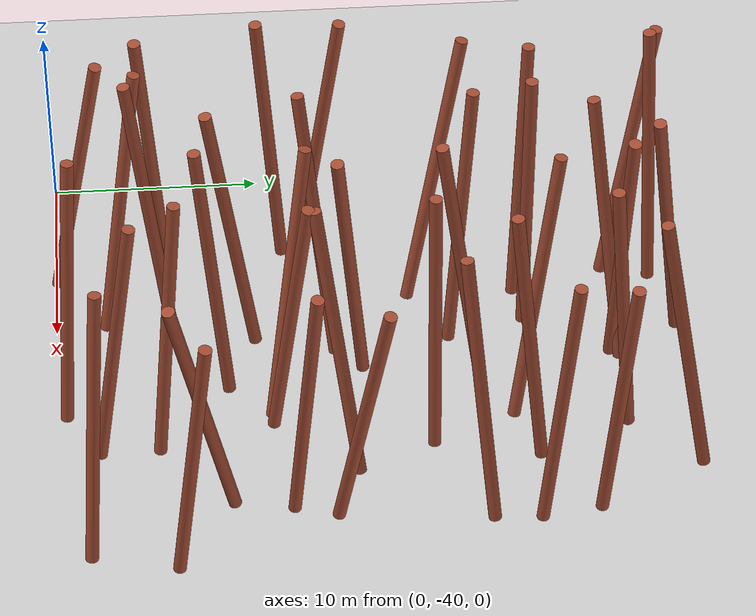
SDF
<sdf version="1.5">
 <world name="default">
  <include><uri>model://sun</uri></include>
  <include><uri>model://ground_plane</uri></include>
  <include><uri>model://asphalt_plane</uri><pose>0 0 -0.000001 0 0 0</pose></include>
  <model name="unit_cylinder_0">
   <pose>7.46567 -38.61308 7.70000 -0.17238 0.07720 0.00000</pose>
   <gravity>0 0 0</gravity>
   <link name="link">
    <inertial>
     <mass>100</mass>
     <inertia><ixx>20</ixx><ixy>0</ixy><ixz>0</ixz><iyy>20</iyy><iyz>0</iyz><izz>20</izz></inertia>
    </inertial>
    <collision name="collision">
     <geometry><cylinder><radius>0.300</radius><length>15.000</length></cylinder></geometry>
    </collision>
    <visual name="visual">
     <geometry><cylinder><radius>0.300</radius><length>15.000</length></cylinder></geometry>
     <material>
      <script><name>Gazebo/Bricks</name><uri>file://media/materials/scripts/gazebo.material</uri></script>
     </material>
    </visual>
   </link>
   <static>1</static>
  </model>
  <model name="unit_cylinder_1">
   <pose>6.21727 -35.06247 7.70000 0.06165 0.05477 0.00000</pose>
   <gravity>0 0 0</gravity>
   <link name="link">
    <inertial>
     <mass>100</mass>
     <inertia><ixx>20</ixx><ixy>0</ixy><ixz>0</ixz><iyy>20</iyy><iyz>0</iyz><izz>20</izz></inertia>
    </inertial>
    <collision name="collision">
     <geometry><cylinder><radius>0.300</radius><length>15.000</length></cylinder></geometry>
    </collision>
    <visual name="visual">
     <geometry><cylinder><radius>0.300</radius><length>15.000</length></cylinder></geometry>
     <material>
      <script><name>Gazebo/Bricks</name><uri>file://media/materials/scripts/gazebo.material</uri></script>
     </material>
    </visual>
    <kinematic>1</kinematic>
   </link>
   <static>0</static>
   <plugin name="dynamic_obstacle_motion_1" filename="libobstaclePathPlugin.so">
    <motion_type>proximity_linear</motion_type>
    <direction>-0.527582038 0.849504086 0.000000000</direction>
    <velocity>0.512762627</velocity>
    <activation_distance>20.000000000</activation_distance>
    <activation_model>iris</activation_model>
    <orientation>false</orientation>
    <marker_enabled>true</marker_enabled>
    <marker_id>1</marker_id>
    <marker_radius>0.300000000</marker_radius>
    <marker_height>15.000000000</marker_height>
    <marker_rate>20.0</marker_rate>
    <marker_topic>/uav_simulator/dynamic_obstacles</marker_topic>
    <marker_frame>map</marker_frame>
   </plugin>
  </model>
  <model name="unit_cylinder_2">
   <pose>5.43931 -29.41341 7.70000 0.06542 0.03011 0.00000</pose>
   <gravity>0 0 0</gravity>
   <link name="link">
    <inertial>
     <mass>100</mass>
     <inertia><ixx>20</ixx><ixy>0</ixy><ixz>0</ixz><iyy>20</iyy><iyz>0</iyz><izz>20</izz></inertia>
    </inertial>
    <collision name="collision">
     <geometry><cylinder><radius>0.300</radius><length>15.000</length></cylinder></geometry>
    </collision>
    <visual name="visual">
     <geometry><cylinder><radius>0.300</radius><length>15.000</length></cylinder></geometry>
     <material>
      <script><name>Gazebo/Bricks</name><uri>file://media/materials/scripts/gazebo.material</uri></script>
     </material>
    </visual>
   </link>
   <static>1</static>
  </model>
  <model name="unit_cylinder_3">
   <pose>5.35619 -27.03663 7.70000 -0.13429 0.05906 0.00000</pose>
   <gravity>0 0 0</gravity>
   <link name="link">
    <inertial>
     <mass>100</mass>
     <inertia><ixx>20</ixx><ixy>0</ixy><ixz>0</ixz><iyy>20</iyy><iyz>0</iyz><izz>20</izz></inertia>
    </inertial>
    <collision name="collision">
     <geometry><cylinder><radius>0.300</radius><length>15.000</length></cylinder></geometry>
    </collision>
    <visual name="visual">
     <geometry><cylinder><radius>0.300</radius><length>15.000</length></cylinder></geometry>
     <material>
      <script><name>Gazebo/Bricks</name><uri>file://media/materials/scripts/gazebo.material</uri></script>
     </material>
    </visual>
   </link>
   <static>1</static>
  </model>
  <model name="unit_cylinder_4">
   <pose>8.06512 -21.73586 7.70000 -0.17223 -0.11071 0.00000</pose>
   <gravity>0 0 0</gravity>
   <link name="link">
    <inertial>
     <mass>100</mass>
     <inertia><ixx>20</ixx><ixy>0</ixy><ixz>0</ixz><iyy>20</iyy><iyz>0</iyz><izz>20</izz></inertia>
    </inertial>
    <collision name="collision">
     <geometry><cylinder><radius>0.300</radius><length>15.000</length></cylinder></geometry>
    </collision>
    <visual name="visual">
     <geometry><cylinder><radius>0.300</radius><length>15.000</length></cylinder></geometry>
     <material>
      <script><name>Gazebo/Bricks</name><uri>file://media/materials/scripts/gazebo.material</uri></script>
     </material>
    </visual>
    <kinematic>1</kinematic>
   </link>
   <static>0</static>
   <plugin name="dynamic_obstacle_motion_4" filename="libobstaclePathPlugin.so">
    <motion_type>proximity_linear</motion_type>
    <direction>-0.752486816 -0.658607312 0.000000000</direction>
    <velocity>0.386107136</velocity>
    <activation_distance>20.000000000</activation_distance>
    <activation_model>iris</activation_model>
    <orientation>false</orientation>
    <marker_enabled>true</marker_enabled>
    <marker_id>4</marker_id>
    <marker_radius>0.300000000</marker_radius>
    <marker_height>15.000000000</marker_height>
    <marker_rate>20.0</marker_rate>
    <marker_topic>/uav_simulator/dynamic_obstacles</marker_topic>
    <marker_frame>map</marker_frame>
   </plugin>
  </model>
  <model name="unit_cylinder_5">
   <pose>8.40337 -17.65239 7.70000 -0.02762 -0.04246 0.00000</pose>
   <gravity>0 0 0</gravity>
   <link name="link">
    <inertial>
     <mass>100</mass>
     <inertia><ixx>20</ixx><ixy>0</ixy><ixz>0</ixz><iyy>20</iyy><iyz>0</iyz><izz>20</izz></inertia>
    </inertial>
    <collision name="collision">
     <geometry><cylinder><radius>0.300</radius><length>15.000</length></cylinder></geometry>
    </collision>
    <visual name="visual">
     <geometry><cylinder><radius>0.300</radius><length>15.000</length></cylinder></geometry>
     <material>
      <script><name>Gazebo/Bricks</name><uri>file://media/materials/scripts/gazebo.material</uri></script>
     </material>
    </visual>
    <kinematic>1</kinematic>
   </link>
   <static>0</static>
   <plugin name="dynamic_obstacle_motion_5" filename="libobstaclePathPlugin.so">
    <motion_type>proximity_linear</motion_type>
    <direction>-0.904084248 -0.427354271 -0.000000000</direction>
    <velocity>0.561092228</velocity>
    <activation_distance>20.000000000</activation_distance>
    <activation_model>iris</activation_model>
    <orientation>false</orientation>
    <marker_enabled>true</marker_enabled>
    <marker_id>5</marker_id>
    <marker_radius>0.300000000</marker_radius>
    <marker_height>15.000000000</marker_height>
    <marker_rate>20.0</marker_rate>
    <marker_topic>/uav_simulator/dynamic_obstacles</marker_topic>
    <marker_frame>map</marker_frame>
   </plugin>
  </model>
  <model name="unit_cylinder_6">
   <pose>7.36256 -12.42776 7.70000 -0.13301 -0.02550 0.00000</pose>
   <gravity>0 0 0</gravity>
   <link name="link">
    <inertial>
     <mass>100</mass>
     <inertia><ixx>20</ixx><ixy>0</ixy><ixz>0</ixz><iyy>20</iyy><iyz>0</iyz><izz>20</izz></inertia>
    </inertial>
    <collision name="collision">
     <geometry><cylinder><radius>0.300</radius><length>15.000</length></cylinder></geometry>
    </collision>
    <visual name="visual">
     <geometry><cylinder><radius>0.300</radius><length>15.000</length></cylinder></geometry>
     <material>
      <script><name>Gazebo/Bricks</name><uri>file://media/materials/scripts/gazebo.material</uri></script>
     </material>
    </visual>
    <kinematic>1</kinematic>
   </link>
   <static>0</static>
   <plugin name="dynamic_obstacle_motion_6" filename="libobstaclePathPlugin.so">
    <motion_type>proximity_linear</motion_type>
    <direction>0.969228966 -0.246160946 0.000000000</direction>
    <velocity>1.718504181</velocity>
    <activation_distance>20.000000000</activation_distance>
    <activation_model>iris</activation_model>
    <orientation>false</orientation>
    <marker_enabled>true</marker_enabled>
    <marker_id>6</marker_id>
    <marker_radius>0.300000000</marker_radius>
    <marker_height>15.000000000</marker_height>
    <marker_rate>20.0</marker_rate>
    <marker_topic>/uav_simulator/dynamic_obstacles</marker_topic>
    <marker_frame>map</marker_frame>
   </plugin>
  </model>
  <model name="unit_cylinder_7">
   <pose>7.78029 -11.45430 7.70000 0.04315 -0.04277 0.00000</pose>
   <gravity>0 0 0</gravity>
   <link name="link">
    <inertial>
     <mass>100</mass>
     <inertia><ixx>20</ixx><ixy>0</ixy><ixz>0</ixz><iyy>20</iyy><iyz>0</iyz><izz>20</izz></inertia>
    </inertial>
    <collision name="collision">
     <geometry><cylinder><radius>0.300</radius><length>15.000</length></cylinder></geometry>
    </collision>
    <visual name="visual">
     <geometry><cylinder><radius>0.300</radius><length>15.000</length></cylinder></geometry>
     <material>
      <script><name>Gazebo/Bricks</name><uri>file://media/materials/scripts/gazebo.material</uri></script>
     </material>
    </visual>
    <kinematic>1</kinematic>
   </link>
   <static>0</static>
   <plugin name="dynamic_obstacle_motion_7" filename="libobstaclePathPlugin.so">
    <motion_type>proximity_linear</motion_type>
    <direction>0.122197259 -0.992505834 0.000000000</direction>
    <velocity>0.489649809</velocity>
    <activation_distance>20.000000000</activation_distance>
    <activation_model>iris</activation_model>
    <orientation>false</orientation>
    <marker_enabled>true</marker_enabled>
    <marker_id>7</marker_id>
    <marker_radius>0.300000000</marker_radius>
    <marker_height>15.000000000</marker_height>
    <marker_rate>20.0</marker_rate>
    <marker_topic>/uav_simulator/dynamic_obstacles</marker_topic>
    <marker_frame>map</marker_frame>
   </plugin>
  </model>
  <model name="unit_cylinder_20">
   <pose>9.39629 -36.58790 7.70000 -0.13366 -0.08819 0.00000</pose>
   <gravity>0 0 0</gravity>
   <link name="link">
    <inertial>
     <mass>100</mass>
     <inertia><ixx>20</ixx><ixy>0</ixy><ixz>0</ixz><iyy>20</iyy><iyz>0</iyz><izz>20</izz></inertia>
    </inertial>
    <collision name="collision">
     <geometry><cylinder><radius>0.300</radius><length>15.000</length></cylinder></geometry>
    </collision>
    <visual name="visual">
     <geometry><cylinder><radius>0.300</radius><length>15.000</length></cylinder></geometry>
     <material>
      <script><name>Gazebo/Bricks</name><uri>file://media/materials/scripts/gazebo.material</uri></script>
     </material>
    </visual>
   </link>
   <static>1</static>
  </model>
  <model name="unit_cylinder_21">
   <pose>9.72256 -35.26683 7.70000 0.10694 -0.01709 0.00000</pose>
   <gravity>0 0 0</gravity>
   <link name="link">
    <inertial>
     <mass>100</mass>
     <inertia><ixx>20</ixx><ixy>0</ixy><ixz>0</ixz><iyy>20</iyy><iyz>0</iyz><izz>20</izz></inertia>
    </inertial>
    <collision name="collision">
     <geometry><cylinder><radius>0.300</radius><length>15.000</length></cylinder></geometry>
    </collision>
    <visual name="visual">
     <geometry><cylinder><radius>0.300</radius><length>15.000</length></cylinder></geometry>
     <material>
      <script><name>Gazebo/Bricks</name><uri>file://media/materials/scripts/gazebo.material</uri></script>
     </material>
    </visual>
   </link>
   <static>1</static>
  </model>
  <model name="unit_cylinder_22">
   <pose>11.58012 -31.44989 7.70000 0.13153 0.03549 0.00000</pose>
   <gravity>0 0 0</gravity>
   <link name="link">
    <inertial>
     <mass>100</mass>
     <inertia><ixx>20</ixx><ixy>0</ixy><ixz>0</ixz><iyy>20</iyy><iyz>0</iyz><izz>20</izz></inertia>
    </inertial>
    <collision name="collision">
     <geometry><cylinder><radius>0.300</radius><length>15.000</length></cylinder></geometry>
    </collision>
    <visual name="visual">
     <geometry><cylinder><radius>0.300</radius><length>15.000</length></cylinder></geometry>
     <material>
      <script><name>Gazebo/Bricks</name><uri>file://media/materials/scripts/gazebo.material</uri></script>
     </material>
    </visual>
    <kinematic>1</kinematic>
   </link>
   <static>0</static>
   <plugin name="dynamic_obstacle_motion_22" filename="libobstaclePathPlugin.so">
    <motion_type>proximity_linear</motion_type>
    <direction>0.973647008 -0.228060308 0.000000000</direction>
    <velocity>0.743068776</velocity>
    <activation_distance>20.000000000</activation_distance>
    <activation_model>iris</activation_model>
    <orientation>false</orientation>
    <marker_enabled>true</marker_enabled>
    <marker_id>22</marker_id>
    <marker_radius>0.300000000</marker_radius>
    <marker_height>15.000000000</marker_height>
    <marker_rate>20.0</marker_rate>
    <marker_topic>/uav_simulator/dynamic_obstacles</marker_topic>
    <marker_frame>map</marker_frame>
   </plugin>
  </model>
  <model name="unit_cylinder_23">
   <pose>11.50044 -27.46089 7.70000 0.10107 -0.10912 0.00000</pose>
   <gravity>0 0 0</gravity>
   <link name="link">
    <inertial>
     <mass>100</mass>
     <inertia><ixx>20</ixx><ixy>0</ixy><ixz>0</ixz><iyy>20</iyy><iyz>0</iyz><izz>20</izz></inertia>
    </inertial>
    <collision name="collision">
     <geometry><cylinder><radius>0.300</radius><length>15.000</length></cylinder></geometry>
    </collision>
    <visual name="visual">
     <geometry><cylinder><radius>0.300</radius><length>15.000</length></cylinder></geometry>
     <material>
      <script><name>Gazebo/Bricks</name><uri>file://media/materials/scripts/gazebo.material</uri></script>
     </material>
    </visual>
   </link>
   <static>1</static>
  </model>
  <model name="unit_cylinder_24">
   <pose>11.39231 -20.74590 7.70000 -0.06415 -0.04304 0.00000</pose>
   <gravity>0 0 0</gravity>
   <link name="link">
    <inertial>
     <mass>100</mass>
     <inertia><ixx>20</ixx><ixy>0</ixy><ixz>0</ixz><iyy>20</iyy><iyz>0</iyz><izz>20</izz></inertia>
    </inertial>
    <collision name="collision">
     <geometry><cylinder><radius>0.300</radius><length>15.000</length></cylinder></geometry>
    </collision>
    <visual name="visual">
     <geometry><cylinder><radius>0.300</radius><length>15.000</length></cylinder></geometry>
     <material>
      <script><name>Gazebo/Bricks</name><uri>file://media/materials/scripts/gazebo.material</uri></script>
     </material>
    </visual>
   </link>
   <static>1</static>
  </model>
  <model name="unit_cylinder_25">
   <pose>10.60450 -17.54416 7.70000 -0.00202 -0.00961 0.00000</pose>
   <gravity>0 0 0</gravity>
   <link name="link">
    <inertial>
     <mass>100</mass>
     <inertia><ixx>20</ixx><ixy>0</ixy><ixz>0</ixz><iyy>20</iyy><iyz>0</iyz><izz>20</izz></inertia>
    </inertial>
    <collision name="collision">
     <geometry><cylinder><radius>0.300</radius><length>15.000</length></cylinder></geometry>
    </collision>
    <visual name="visual">
     <geometry><cylinder><radius>0.300</radius><length>15.000</length></cylinder></geometry>
     <material>
      <script><name>Gazebo/Bricks</name><uri>file://media/materials/scripts/gazebo.material</uri></script>
     </material>
    </visual>
   </link>
   <static>1</static>
  </model>
  <model name="unit_cylinder_26">
   <pose>12.69051 -14.01166 7.70000 0.11256 -0.11408 0.00000</pose>
   <gravity>0 0 0</gravity>
   <link name="link">
    <inertial>
     <mass>100</mass>
     <inertia><ixx>20</ixx><ixy>0</ixy><ixz>0</ixz><iyy>20</iyy><iyz>0</iyz><izz>20</izz></inertia>
    </inertial>
    <collision name="collision">
     <geometry><cylinder><radius>0.300</radius><length>15.000</length></cylinder></geometry>
    </collision>
    <visual name="visual">
     <geometry><cylinder><radius>0.300</radius><length>15.000</length></cylinder></geometry>
     <material>
      <script><name>Gazebo/Bricks</name><uri>file://media/materials/scripts/gazebo.material</uri></script>
     </material>
    </visual>
   </link>
   <static>1</static>
  </model>
  <model name="unit_cylinder_27">
   <pose>12.63484 -11.14395 7.70000 0.12269 0.13580 0.00000</pose>
   <gravity>0 0 0</gravity>
   <link name="link">
    <inertial>
     <mass>100</mass>
     <inertia><ixx>20</ixx><ixy>0</ixy><ixz>0</ixz><iyy>20</iyy><iyz>0</iyz><izz>20</izz></inertia>
    </inertial>
    <collision name="collision">
     <geometry><cylinder><radius>0.300</radius><length>15.000</length></cylinder></geometry>
    </collision>
    <visual name="visual">
     <geometry><cylinder><radius>0.300</radius><length>15.000</length></cylinder></geometry>
     <material>
      <script><name>Gazebo/Bricks</name><uri>file://media/materials/scripts/gazebo.material</uri></script>
     </material>
    </visual>
    <kinematic>1</kinematic>
   </link>
   <static>0</static>
   <plugin name="dynamic_obstacle_motion_27" filename="libobstaclePathPlugin.so">
    <motion_type>proximity_linear</motion_type>
    <direction>0.649691815 -0.760197701 0.000000000</direction>
    <velocity>0.879295809</velocity>
    <activation_distance>20.000000000</activation_distance>
    <activation_model>iris</activation_model>
    <orientation>false</orientation>
    <marker_enabled>true</marker_enabled>
    <marker_id>27</marker_id>
    <marker_radius>0.300000000</marker_radius>
    <marker_height>15.000000000</marker_height>
    <marker_rate>20.0</marker_rate>
    <marker_topic>/uav_simulator/dynamic_obstacles</marker_topic>
    <marker_frame>map</marker_frame>
   </plugin>
  </model>
  <model name="unit_cylinder_40">
   <pose>15.24320 -39.07799 7.70000 -0.05871 -0.08878 0.00000</pose>
   <gravity>0 0 0</gravity>
   <link name="link">
    <inertial>
     <mass>100</mass>
     <inertia><ixx>20</ixx><ixy>0</ixy><ixz>0</ixz><iyy>20</iyy><iyz>0</iyz><izz>20</izz></inertia>
    </inertial>
    <collision name="collision">
     <geometry><cylinder><radius>0.300</radius><length>15.000</length></cylinder></geometry>
    </collision>
    <visual name="visual">
     <geometry><cylinder><radius>0.300</radius><length>15.000</length></cylinder></geometry>
     <material>
      <script><name>Gazebo/Bricks</name><uri>file://media/materials/scripts/gazebo.material</uri></script>
     </material>
    </visual>
   </link>
   <static>1</static>
  </model>
  <model name="unit_cylinder_41">
   <pose>14.39436 -32.42573 7.70000 0.07868 -0.00841 0.00000</pose>
   <gravity>0 0 0</gravity>
   <link name="link">
    <inertial>
     <mass>100</mass>
     <inertia><ixx>20</ixx><ixy>0</ixy><ixz>0</ixz><iyy>20</iyy><iyz>0</iyz><izz>20</izz></inertia>
    </inertial>
    <collision name="collision">
     <geometry><cylinder><radius>0.300</radius><length>15.000</length></cylinder></geometry>
    </collision>
    <visual name="visual">
     <geometry><cylinder><radius>0.300</radius><length>15.000</length></cylinder></geometry>
     <material>
      <script><name>Gazebo/Bricks</name><uri>file://media/materials/scripts/gazebo.material</uri></script>
     </material>
    </visual>
    <kinematic>1</kinematic>
   </link>
   <static>0</static>
   <plugin name="dynamic_obstacle_motion_41" filename="libobstaclePathPlugin.so">
    <motion_type>proximity_linear</motion_type>
    <direction>0.993224320 -0.116212952 0.000000000</direction>
    <velocity>0.731608784</velocity>
    <activation_distance>20.000000000</activation_distance>
    <activation_model>iris</activation_model>
    <orientation>false</orientation>
    <marker_enabled>true</marker_enabled>
    <marker_id>41</marker_id>
    <marker_radius>0.300000000</marker_radius>
    <marker_height>15.000000000</marker_height>
    <marker_rate>20.0</marker_rate>
    <marker_topic>/uav_simulator/dynamic_obstacles</marker_topic>
    <marker_frame>map</marker_frame>
   </plugin>
  </model>
  <model name="unit_cylinder_42">
   <pose>15.32062 -28.97688 7.70000 -0.12245 -0.14401 0.00000</pose>
   <gravity>0 0 0</gravity>
   <link name="link">
    <inertial>
     <mass>100</mass>
     <inertia><ixx>20</ixx><ixy>0</ixy><ixz>0</ixz><iyy>20</iyy><iyz>0</iyz><izz>20</izz></inertia>
    </inertial>
    <collision name="collision">
     <geometry><cylinder><radius>0.300</radius><length>15.000</length></cylinder></geometry>
    </collision>
    <visual name="visual">
     <geometry><cylinder><radius>0.300</radius><length>15.000</length></cylinder></geometry>
     <material>
      <script><name>Gazebo/Bricks</name><uri>file://media/materials/scripts/gazebo.material</uri></script>
     </material>
    </visual>
    <kinematic>1</kinematic>
   </link>
   <static>0</static>
   <plugin name="dynamic_obstacle_motion_42" filename="libobstaclePathPlugin.so">
    <motion_type>proximity_linear</motion_type>
    <direction>-0.699675193 -0.714461072 0.000000000</direction>
    <velocity>0.940670136</velocity>
    <activation_distance>20.000000000</activation_distance>
    <activation_model>iris</activation_model>
    <orientation>false</orientation>
    <marker_enabled>true</marker_enabled>
    <marker_id>42</marker_id>
    <marker_radius>0.300000000</marker_radius>
    <marker_height>15.000000000</marker_height>
    <marker_rate>20.0</marker_rate>
    <marker_topic>/uav_simulator/dynamic_obstacles</marker_topic>
    <marker_frame>map</marker_frame>
   </plugin>
  </model>
  <model name="unit_cylinder_43">
   <pose>14.44890 -26.06371 7.70000 0.08279 0.12581 0.00000</pose>
   <gravity>0 0 0</gravity>
   <link name="link">
    <inertial>
     <mass>100</mass>
     <inertia><ixx>20</ixx><ixy>0</ixy><ixz>0</ixz><iyy>20</iyy><iyz>0</iyz><izz>20</izz></inertia>
    </inertial>
    <collision name="collision">
     <geometry><cylinder><radius>0.300</radius><length>15.000</length></cylinder></geometry>
    </collision>
    <visual name="visual">
     <geometry><cylinder><radius>0.300</radius><length>15.000</length></cylinder></geometry>
     <material>
      <script><name>Gazebo/Bricks</name><uri>file://media/materials/scripts/gazebo.material</uri></script>
     </material>
    </visual>
   </link>
   <static>1</static>
  </model>
  <model name="unit_cylinder_44">
   <pose>14.63150 -20.93398 7.70000 0.13626 0.00352 0.00000</pose>
   <gravity>0 0 0</gravity>
   <link name="link">
    <inertial>
     <mass>100</mass>
     <inertia><ixx>20</ixx><ixy>0</ixy><ixz>0</ixz><iyy>20</iyy><iyz>0</iyz><izz>20</izz></inertia>
    </inertial>
    <collision name="collision">
     <geometry><cylinder><radius>0.300</radius><length>15.000</length></cylinder></geometry>
    </collision>
    <visual name="visual">
     <geometry><cylinder><radius>0.300</radius><length>15.000</length></cylinder></geometry>
     <material>
      <script><name>Gazebo/Bricks</name><uri>file://media/materials/scripts/gazebo.material</uri></script>
     </material>
    </visual>
    <kinematic>1</kinematic>
   </link>
   <static>0</static>
   <plugin name="dynamic_obstacle_motion_44" filename="libobstaclePathPlugin.so">
    <motion_type>proximity_linear</motion_type>
    <direction>-0.946795950 0.321834476 0.000000000</direction>
    <velocity>1.678400284</velocity>
    <activation_distance>20.000000000</activation_distance>
    <activation_model>iris</activation_model>
    <orientation>false</orientation>
    <marker_enabled>true</marker_enabled>
    <marker_id>44</marker_id>
    <marker_radius>0.300000000</marker_radius>
    <marker_height>15.000000000</marker_height>
    <marker_rate>20.0</marker_rate>
    <marker_topic>/uav_simulator/dynamic_obstacles</marker_topic>
    <marker_frame>map</marker_frame>
   </plugin>
  </model>
  <model name="unit_cylinder_45">
   <pose>16.32693 -17.65031 7.70000 -0.12097 -0.09576 0.00000</pose>
   <gravity>0 0 0</gravity>
   <link name="link">
    <inertial>
     <mass>100</mass>
     <inertia><ixx>20</ixx><ixy>0</ixy><ixz>0</ixz><iyy>20</iyy><iyz>0</iyz><izz>20</izz></inertia>
    </inertial>
    <collision name="collision">
     <geometry><cylinder><radius>0.300</radius><length>15.000</length></cylinder></geometry>
    </collision>
    <visual name="visual">
     <geometry><cylinder><radius>0.300</radius><length>15.000</length></cylinder></geometry>
     <material>
      <script><name>Gazebo/Bricks</name><uri>file://media/materials/scripts/gazebo.material</uri></script>
     </material>
    </visual>
   </link>
   <static>1</static>
  </model>
  <model name="unit_cylinder_46">
   <pose>14.07234 -13.47259 7.70000 -0.01622 0.12282 0.00000</pose>
   <gravity>0 0 0</gravity>
   <link name="link">
    <inertial>
     <mass>100</mass>
     <inertia><ixx>20</ixx><ixy>0</ixy><ixz>0</ixz><iyy>20</iyy><iyz>0</iyz><izz>20</izz></inertia>
    </inertial>
    <collision name="collision">
     <geometry><cylinder><radius>0.300</radius><length>15.000</length></cylinder></geometry>
    </collision>
    <visual name="visual">
     <geometry><cylinder><radius>0.300</radius><length>15.000</length></cylinder></geometry>
     <material>
      <script><name>Gazebo/Bricks</name><uri>file://media/materials/scripts/gazebo.material</uri></script>
     </material>
    </visual>
    <kinematic>1</kinematic>
   </link>
   <static>0</static>
   <plugin name="dynamic_obstacle_motion_46" filename="libobstaclePathPlugin.so">
    <motion_type>proximity_linear</motion_type>
    <direction>0.953171312 -0.302430902 0.000000000</direction>
    <velocity>0.529695305</velocity>
    <activation_distance>20.000000000</activation_distance>
    <activation_model>iris</activation_model>
    <orientation>false</orientation>
    <marker_enabled>true</marker_enabled>
    <marker_id>46</marker_id>
    <marker_radius>0.300000000</marker_radius>
    <marker_height>15.000000000</marker_height>
    <marker_rate>20.0</marker_rate>
    <marker_topic>/uav_simulator/dynamic_obstacles</marker_topic>
    <marker_frame>map</marker_frame>
   </plugin>
  </model>
  <model name="unit_cylinder_60">
   <pose>18.67548 -36.98273 7.70000 -0.13110 0.04058 0.00000</pose>
   <gravity>0 0 0</gravity>
   <link name="link">
    <inertial>
     <mass>100</mass>
     <inertia><ixx>20</ixx><ixy>0</ixy><ixz>0</ixz><iyy>20</iyy><iyz>0</iyz><izz>20</izz></inertia>
    </inertial>
    <collision name="collision">
     <geometry><cylinder><radius>0.300</radius><length>15.000</length></cylinder></geometry>
    </collision>
    <visual name="visual">
     <geometry><cylinder><radius>0.300</radius><length>15.000</length></cylinder></geometry>
     <material>
      <script><name>Gazebo/Bricks</name><uri>file://media/materials/scripts/gazebo.material</uri></script>
     </material>
    </visual>
    <kinematic>1</kinematic>
   </link>
   <static>0</static>
   <plugin name="dynamic_obstacle_motion_60" filename="libobstaclePathPlugin.so">
    <motion_type>proximity_linear</motion_type>
    <direction>0.801693776 0.597734966 0.000000000</direction>
    <velocity>0.264390424</velocity>
    <activation_distance>20.000000000</activation_distance>
    <activation_model>iris</activation_model>
    <orientation>false</orientation>
    <marker_enabled>true</marker_enabled>
    <marker_id>60</marker_id>
    <marker_radius>0.300000000</marker_radius>
    <marker_height>15.000000000</marker_height>
    <marker_rate>20.0</marker_rate>
    <marker_topic>/uav_simulator/dynamic_obstacles</marker_topic>
    <marker_frame>map</marker_frame>
   </plugin>
  </model>
  <model name="unit_cylinder_61">
   <pose>17.97494 -34.60423 7.70000 -0.07986 -0.04009 0.00000</pose>
   <gravity>0 0 0</gravity>
   <link name="link">
    <inertial>
     <mass>100</mass>
     <inertia><ixx>20</ixx><ixy>0</ixy><ixz>0</ixz><iyy>20</iyy><iyz>0</iyz><izz>20</izz></inertia>
    </inertial>
    <collision name="collision">
     <geometry><cylinder><radius>0.300</radius><length>15.000</length></cylinder></geometry>
    </collision>
    <visual name="visual">
     <geometry><cylinder><radius>0.300</radius><length>15.000</length></cylinder></geometry>
     <material>
      <script><name>Gazebo/Bricks</name><uri>file://media/materials/scripts/gazebo.material</uri></script>
     </material>
    </visual>
    <kinematic>1</kinematic>
   </link>
   <static>0</static>
   <plugin name="dynamic_obstacle_motion_61" filename="libobstaclePathPlugin.so">
    <motion_type>proximity_linear</motion_type>
    <direction>0.759822090 -0.650131057 0.000000000</direction>
    <velocity>0.771358094</velocity>
    <activation_distance>20.000000000</activation_distance>
    <activation_model>iris</activation_model>
    <orientation>false</orientation>
    <marker_enabled>true</marker_enabled>
    <marker_id>61</marker_id>
    <marker_radius>0.300000000</marker_radius>
    <marker_height>15.000000000</marker_height>
    <marker_rate>20.0</marker_rate>
    <marker_topic>/uav_simulator/dynamic_obstacles</marker_topic>
    <marker_frame>map</marker_frame>
   </plugin>
  </model>
  <model name="unit_cylinder_62">
   <pose>17.60856 -28.99143 7.70000 -0.11386 0.09152 0.00000</pose>
   <gravity>0 0 0</gravity>
   <link name="link">
    <inertial>
     <mass>100</mass>
     <inertia><ixx>20</ixx><ixy>0</ixy><ixz>0</ixz><iyy>20</iyy><iyz>0</iyz><izz>20</izz></inertia>
    </inertial>
    <collision name="collision">
     <geometry><cylinder><radius>0.300</radius><length>15.000</length></cylinder></geometry>
    </collision>
    <visual name="visual">
     <geometry><cylinder><radius>0.300</radius><length>15.000</length></cylinder></geometry>
     <material>
      <script><name>Gazebo/Bricks</name><uri>file://media/materials/scripts/gazebo.material</uri></script>
     </material>
    </visual>
    <kinematic>1</kinematic>
   </link>
   <static>0</static>
   <plugin name="dynamic_obstacle_motion_62" filename="libobstaclePathPlugin.so">
    <motion_type>proximity_linear</motion_type>
    <direction>-0.800727740 0.599028452 0.000000000</direction>
    <velocity>1.682247899</velocity>
    <activation_distance>20.000000000</activation_distance>
    <activation_model>iris</activation_model>
    <orientation>false</orientation>
    <marker_enabled>true</marker_enabled>
    <marker_id>62</marker_id>
    <marker_radius>0.300000000</marker_radius>
    <marker_height>15.000000000</marker_height>
    <marker_rate>20.0</marker_rate>
    <marker_topic>/uav_simulator/dynamic_obstacles</marker_topic>
    <marker_frame>map</marker_frame>
   </plugin>
  </model>
  <model name="unit_cylinder_63">
   <pose>19.27313 -26.93388 7.70000 0.12374 -0.12818 0.00000</pose>
   <gravity>0 0 0</gravity>
   <link name="link">
    <inertial>
     <mass>100</mass>
     <inertia><ixx>20</ixx><ixy>0</ixy><ixz>0</ixz><iyy>20</iyy><iyz>0</iyz><izz>20</izz></inertia>
    </inertial>
    <collision name="collision">
     <geometry><cylinder><radius>0.300</radius><length>15.000</length></cylinder></geometry>
    </collision>
    <visual name="visual">
     <geometry><cylinder><radius>0.300</radius><length>15.000</length></cylinder></geometry>
     <material>
      <script><name>Gazebo/Bricks</name><uri>file://media/materials/scripts/gazebo.material</uri></script>
     </material>
    </visual>
    <kinematic>1</kinematic>
   </link>
   <static>0</static>
   <plugin name="dynamic_obstacle_motion_63" filename="libobstaclePathPlugin.so">
    <motion_type>proximity_linear</motion_type>
    <direction>0.950449199 -0.310879912 0.000000000</direction>
    <velocity>1.137980196</velocity>
    <activation_distance>20.000000000</activation_distance>
    <activation_model>iris</activation_model>
    <orientation>false</orientation>
    <marker_enabled>true</marker_enabled>
    <marker_id>63</marker_id>
    <marker_radius>0.300000000</marker_radius>
    <marker_height>15.000000000</marker_height>
    <marker_rate>20.0</marker_rate>
    <marker_topic>/uav_simulator/dynamic_obstacles</marker_topic>
    <marker_frame>map</marker_frame>
   </plugin>
  </model>
  <model name="unit_cylinder_64">
   <pose>18.31557 -22.46815 7.70000 0.00588 -0.03665 0.00000</pose>
   <gravity>0 0 0</gravity>
   <link name="link">
    <inertial>
     <mass>100</mass>
     <inertia><ixx>20</ixx><ixy>0</ixy><ixz>0</ixz><iyy>20</iyy><iyz>0</iyz><izz>20</izz></inertia>
    </inertial>
    <collision name="collision">
     <geometry><cylinder><radius>0.300</radius><length>15.000</length></cylinder></geometry>
    </collision>
    <visual name="visual">
     <geometry><cylinder><radius>0.300</radius><length>15.000</length></cylinder></geometry>
     <material>
      <script><name>Gazebo/Bricks</name><uri>file://media/materials/scripts/gazebo.material</uri></script>
     </material>
    </visual>
   </link>
   <static>1</static>
  </model>
  <model name="unit_cylinder_65">
   <pose>19.58478 -18.28068 7.70000 0.10123 -0.01222 0.00000</pose>
   <gravity>0 0 0</gravity>
   <link name="link">
    <inertial>
     <mass>100</mass>
     <inertia><ixx>20</ixx><ixy>0</ixy><ixz>0</ixz><iyy>20</iyy><iyz>0</iyz><izz>20</izz></inertia>
    </inertial>
    <collision name="collision">
     <geometry><cylinder><radius>0.300</radius><length>15.000</length></cylinder></geometry>
    </collision>
    <visual name="visual">
     <geometry><cylinder><radius>0.300</radius><length>15.000</length></cylinder></geometry>
     <material>
      <script><name>Gazebo/Bricks</name><uri>file://media/materials/scripts/gazebo.material</uri></script>
     </material>
    </visual>
   </link>
   <static>1</static>
  </model>
  <model name="unit_cylinder_66">
   <pose>17.97835 -13.85921 7.70000 0.08057 0.02307 0.00000</pose>
   <gravity>0 0 0</gravity>
   <link name="link">
    <inertial>
     <mass>100</mass>
     <inertia><ixx>20</ixx><ixy>0</ixy><ixz>0</ixz><iyy>20</iyy><iyz>0</iyz><izz>20</izz></inertia>
    </inertial>
    <collision name="collision">
     <geometry><cylinder><radius>0.300</radius><length>15.000</length></cylinder></geometry>
    </collision>
    <visual name="visual">
     <geometry><cylinder><radius>0.300</radius><length>15.000</length></cylinder></geometry>
     <material>
      <script><name>Gazebo/Bricks</name><uri>file://media/materials/scripts/gazebo.material</uri></script>
     </material>
    </visual>
   </link>
   <static>1</static>
  </model>
  <model name="unit_cylinder_67">
   <pose>20.50318 -11.31711 7.70000 0.16694 -0.02805 0.00000</pose>
   <gravity>0 0 0</gravity>
   <link name="link">
    <inertial>
     <mass>100</mass>
     <inertia><ixx>20</ixx><ixy>0</ixy><ixz>0</ixz><iyy>20</iyy><iyz>0</iyz><izz>20</izz></inertia>
    </inertial>
    <collision name="collision">
     <geometry><cylinder><radius>0.300</radius><length>15.000</length></cylinder></geometry>
    </collision>
    <visual name="visual">
     <geometry><cylinder><radius>0.300</radius><length>15.000</length></cylinder></geometry>
     <material>
      <script><name>Gazebo/Bricks</name><uri>file://media/materials/scripts/gazebo.material</uri></script>
     </material>
    </visual>
   </link>
   <static>1</static>
  </model>
  <model name="unit_cylinder_80">
   <pose>23.87628 -37.98750 7.70000 -0.06197 -0.12049 0.00000</pose>
   <gravity>0 0 0</gravity>
   <link name="link">
    <inertial>
     <mass>100</mass>
     <inertia><ixx>20</ixx><ixy>0</ixy><ixz>0</ixz><iyy>20</iyy><iyz>0</iyz><izz>20</izz></inertia>
    </inertial>
    <collision name="collision">
     <geometry><cylinder><radius>0.300</radius><length>15.000</length></cylinder></geometry>
    </collision>
    <visual name="visual">
     <geometry><cylinder><radius>0.300</radius><length>15.000</length></cylinder></geometry>
     <material>
      <script><name>Gazebo/Bricks</name><uri>file://media/materials/scripts/gazebo.material</uri></script>
     </material>
    </visual>
    <kinematic>1</kinematic>
   </link>
   <static>0</static>
   <plugin name="dynamic_obstacle_motion_80" filename="libobstaclePathPlugin.so">
    <motion_type>proximity_linear</motion_type>
    <direction>-0.951395497 -0.307971765 0.000000000</direction>
    <velocity>0.151107908</velocity>
    <activation_distance>20.000000000</activation_distance>
    <activation_model>iris</activation_model>
    <orientation>false</orientation>
    <marker_enabled>true</marker_enabled>
    <marker_id>80</marker_id>
    <marker_radius>0.300000000</marker_radius>
    <marker_height>15.000000000</marker_height>
    <marker_rate>20.0</marker_rate>
    <marker_topic>/uav_simulator/dynamic_obstacles</marker_topic>
    <marker_frame>map</marker_frame>
   </plugin>
  </model>
  <model name="unit_cylinder_81">
   <pose>22.99124 -33.13828 7.70000 0.17163 0.14632 0.00000</pose>
   <gravity>0 0 0</gravity>
   <link name="link">
    <inertial>
     <mass>100</mass>
     <inertia><ixx>20</ixx><ixy>0</ixy><ixz>0</ixz><iyy>20</iyy><iyz>0</iyz><izz>20</izz></inertia>
    </inertial>
    <collision name="collision">
     <geometry><cylinder><radius>0.300</radius><length>15.000</length></cylinder></geometry>
    </collision>
    <visual name="visual">
     <geometry><cylinder><radius>0.300</radius><length>15.000</length></cylinder></geometry>
     <material>
      <script><name>Gazebo/Bricks</name><uri>file://media/materials/scripts/gazebo.material</uri></script>
     </material>
    </visual>
    <kinematic>1</kinematic>
   </link>
   <static>0</static>
   <plugin name="dynamic_obstacle_motion_81" filename="libobstaclePathPlugin.so">
    <motion_type>proximity_linear</motion_type>
    <direction>0.803775564 0.594932638 0.000000000</direction>
    <velocity>0.214514172</velocity>
    <activation_distance>20.000000000</activation_distance>
    <activation_model>iris</activation_model>
    <orientation>false</orientation>
    <marker_enabled>true</marker_enabled>
    <marker_id>81</marker_id>
    <marker_radius>0.300000000</marker_radius>
    <marker_height>15.000000000</marker_height>
    <marker_rate>20.0</marker_rate>
    <marker_topic>/uav_simulator/dynamic_obstacles</marker_topic>
    <marker_frame>map</marker_frame>
   </plugin>
  </model>
  <model name="unit_cylinder_82">
   <pose>23.09966 -28.59295 7.70000 -0.07336 0.10975 0.00000</pose>
   <gravity>0 0 0</gravity>
   <link name="link">
    <inertial>
     <mass>100</mass>
     <inertia><ixx>20</ixx><ixy>0</ixy><ixz>0</ixz><iyy>20</iyy><iyz>0</iyz><izz>20</izz></inertia>
    </inertial>
    <collision name="collision">
     <geometry><cylinder><radius>0.300</radius><length>15.000</length></cylinder></geometry>
    </collision>
    <visual name="visual">
     <geometry><cylinder><radius>0.300</radius><length>15.000</length></cylinder></geometry>
     <material>
      <script><name>Gazebo/Bricks</name><uri>file://media/materials/scripts/gazebo.material</uri></script>
     </material>
    </visual>
   </link>
   <static>1</static>
  </model>
  <model name="unit_cylinder_83">
   <pose>23.97167 -26.08110 7.70000 -0.14322 0.14401 0.00000</pose>
   <gravity>0 0 0</gravity>
   <link name="link">
    <inertial>
     <mass>100</mass>
     <inertia><ixx>20</ixx><ixy>0</ixy><ixz>0</ixz><iyy>20</iyy><iyz>0</iyz><izz>20</izz></inertia>
    </inertial>
    <collision name="collision">
     <geometry><cylinder><radius>0.300</radius><length>15.000</length></cylinder></geometry>
    </collision>
    <visual name="visual">
     <geometry><cylinder><radius>0.300</radius><length>15.000</length></cylinder></geometry>
     <material>
      <script><name>Gazebo/Bricks</name><uri>file://media/materials/scripts/gazebo.material</uri></script>
     </material>
    </visual>
    <kinematic>1</kinematic>
   </link>
   <static>0</static>
   <plugin name="dynamic_obstacle_motion_83" filename="libobstaclePathPlugin.so">
    <motion_type>proximity_linear</motion_type>
    <direction>0.955983097 0.293421740 0.000000000</direction>
    <velocity>0.386609586</velocity>
    <activation_distance>20.000000000</activation_distance>
    <activation_model>iris</activation_model>
    <orientation>false</orientation>
    <marker_enabled>true</marker_enabled>
    <marker_id>83</marker_id>
    <marker_radius>0.300000000</marker_radius>
    <marker_height>15.000000000</marker_height>
    <marker_rate>20.0</marker_rate>
    <marker_topic>/uav_simulator/dynamic_obstacles</marker_topic>
    <marker_frame>map</marker_frame>
   </plugin>
  </model>
  <model name="unit_cylinder_84">
   <pose>22.70983 -20.76313 7.70000 0.09587 -0.10581 0.00000</pose>
   <gravity>0 0 0</gravity>
   <link name="link">
    <inertial>
     <mass>100</mass>
     <inertia><ixx>20</ixx><ixy>0</ixy><ixz>0</ixz><iyy>20</iyy><iyz>0</iyz><izz>20</izz></inertia>
    </inertial>
    <collision name="collision">
     <geometry><cylinder><radius>0.300</radius><length>15.000</length></cylinder></geometry>
    </collision>
    <visual name="visual">
     <geometry><cylinder><radius>0.300</radius><length>15.000</length></cylinder></geometry>
     <material>
      <script><name>Gazebo/Bricks</name><uri>file://media/materials/scripts/gazebo.material</uri></script>
     </material>
    </visual>
   </link>
   <static>1</static>
  </model>
  <model name="unit_cylinder_85">
   <pose>23.79724 -17.31467 7.70000 -0.07132 0.03335 0.00000</pose>
   <gravity>0 0 0</gravity>
   <link name="link">
    <inertial>
     <mass>100</mass>
     <inertia><ixx>20</ixx><ixy>0</ixy><ixz>0</ixz><iyy>20</iyy><iyz>0</iyz><izz>20</izz></inertia>
    </inertial>
    <collision name="collision">
     <geometry><cylinder><radius>0.300</radius><length>15.000</length></cylinder></geometry>
    </collision>
    <visual name="visual">
     <geometry><cylinder><radius>0.300</radius><length>15.000</length></cylinder></geometry>
     <material>
      <script><name>Gazebo/Bricks</name><uri>file://media/materials/scripts/gazebo.material</uri></script>
     </material>
    </visual>
   </link>
   <static>1</static>
  </model>
  <model name="unit_cylinder_86">
   <pose>23.71789 -14.70066 7.70000 -0.05035 0.08246 0.00000</pose>
   <gravity>0 0 0</gravity>
   <link name="link">
    <inertial>
     <mass>100</mass>
     <inertia><ixx>20</ixx><ixy>0</ixy><ixz>0</ixz><iyy>20</iyy><iyz>0</iyz><izz>20</izz></inertia>
    </inertial>
    <collision name="collision">
     <geometry><cylinder><radius>0.300</radius><length>15.000</length></cylinder></geometry>
    </collision>
    <visual name="visual">
     <geometry><cylinder><radius>0.300</radius><length>15.000</length></cylinder></geometry>
     <material>
      <script><name>Gazebo/Bricks</name><uri>file://media/materials/scripts/gazebo.material</uri></script>
     </material>
    </visual>
    <kinematic>1</kinematic>
   </link>
   <static>0</static>
   <plugin name="dynamic_obstacle_motion_86" filename="libobstaclePathPlugin.so">
    <motion_type>proximity_linear</motion_type>
    <direction>-0.079106988 -0.996866132 0.000000000</direction>
    <velocity>1.300574863</velocity>
    <activation_distance>20.000000000</activation_distance>
    <activation_model>iris</activation_model>
    <orientation>false</orientation>
    <marker_enabled>true</marker_enabled>
    <marker_id>86</marker_id>
    <marker_radius>0.300000000</marker_radius>
    <marker_height>15.000000000</marker_height>
    <marker_rate>20.0</marker_rate>
    <marker_topic>/uav_simulator/dynamic_obstacles</marker_topic>
    <marker_frame>map</marker_frame>
   </plugin>
  </model>
  <model name="unit_cylinder_101">
   <pose>26.09007 -33.71671 7.70000 -0.10684 0.06559 0.00000</pose>
   <gravity>0 0 0</gravity>
   <link name="link">
    <inertial>
     <mass>100</mass>
     <inertia><ixx>20</ixx><ixy>0</ixy><ixz>0</ixz><iyy>20</iyy><iyz>0</iyz><izz>20</izz></inertia>
    </inertial>
    <collision name="collision">
     <geometry><cylinder><radius>0.300</radius><length>15.000</length></cylinder></geometry>
    </collision>
    <visual name="visual">
     <geometry><cylinder><radius>0.300</radius><length>15.000</length></cylinder></geometry>
     <material>
      <script><name>Gazebo/Bricks</name><uri>file://media/materials/scripts/gazebo.material</uri></script>
     </material>
    </visual>
    <kinematic>1</kinematic>
   </link>
   <static>0</static>
   <plugin name="dynamic_obstacle_motion_101" filename="libobstaclePathPlugin.so">
    <motion_type>proximity_linear</motion_type>
    <direction>-0.127281161 -0.991866678 0.000000000</direction>
    <velocity>0.358961439</velocity>
    <activation_distance>20.000000000</activation_distance>
    <activation_model>iris</activation_model>
    <orientation>false</orientation>
    <marker_enabled>true</marker_enabled>
    <marker_id>101</marker_id>
    <marker_radius>0.300000000</marker_radius>
    <marker_height>15.000000000</marker_height>
    <marker_rate>20.0</marker_rate>
    <marker_topic>/uav_simulator/dynamic_obstacles</marker_topic>
    <marker_frame>map</marker_frame>
   </plugin>
  </model>
 </world>
</sdf>
